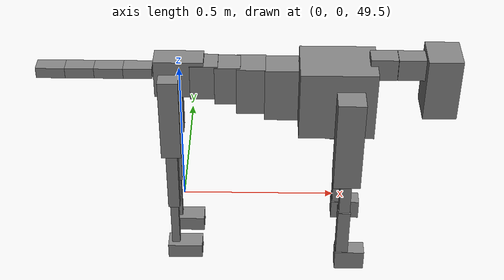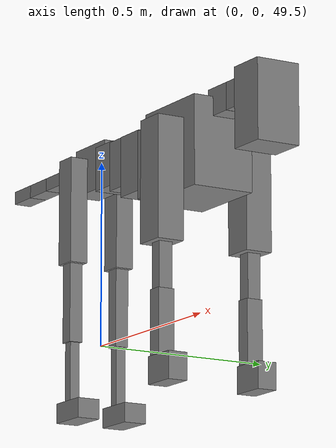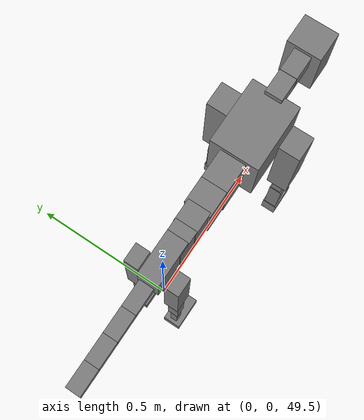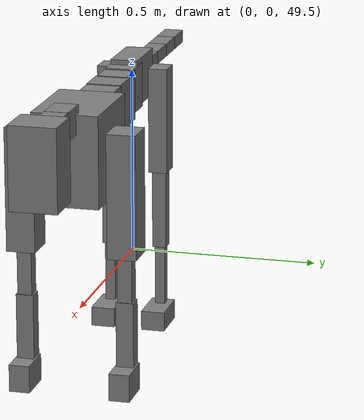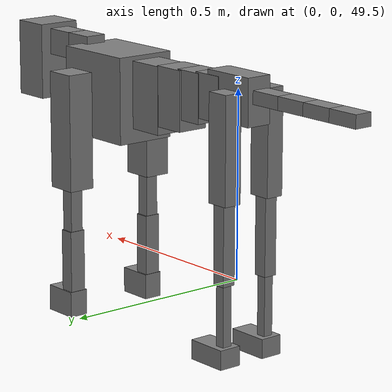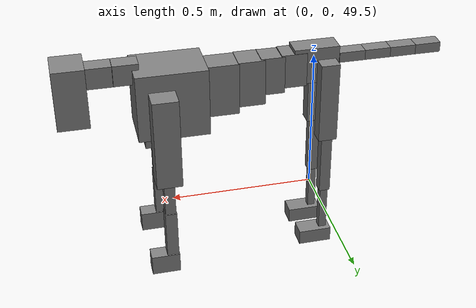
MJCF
<mujoco model="dog">

    <default>
        <joint armature="0.02" stiffness="1" damping="0.2" limited="true"/>
        <geom condim="3" friction="1 0.05 0.05" margin="0.01"/>
        <motor ctrllimited="true" ctrlrange="-1.0 1.0" forcelimited="true" gear="50"/>
    </default>

    <compiler inertiafromgeom="true" angle="radian"/>

    <option timestep="0.016" iterations="50" tolerance="1e-10" solver="Newton" jacobian="dense" cone="pyramidal"/>

    <size nconmax="20000" njmax="60000" nstack="5000000"/>
    <visual>
        <map force="0.1" zfar="30"/>
        <rgba haze="0.15 0.25 0.35 1"/>
        <quality shadowsize="2048"/>
        <global offwidth="800" offheight="800"/>
    </visual>

    <asset>
        <texture type="skybox" builtin="gradient" rgb1="0.3 0.5 0.7" rgb2="0 0 0" width="512" height="512"/>
        <texture name="texplane" type="2d" builtin="checker" rgb1=".2 .3 .4" rgb2=".1 0.15 0.2" width="512" height="512"
                 mark="cross" markrgb=".8 .8 .8"/>
        <texture name="texgeom" type="cube" builtin="flat" mark="cross" width="127" height="1278" rgb1="0.8 0.6 0.4"
                 rgb2="0.8 0.6 0.4" markrgb="1 1 1" random="0.01"/>

        <material name="matplane" reflectance="0.3" texture="texplane" texrepeat="1 1" texuniform="true"/>
        <material name="matgeom" texture="texgeom" texuniform="true" rgba="0.8 0.6 .4 1"/>
    </asset>

    <worldbody>
        <geom name="floor" pos="0 0 0" size="0 0 .25" type="plane" material="matplane" condim="3"/>

        <light directional="false" diffuse=".2 .2 .2" specular="0 0 0" pos="0 0 5" dir="0 0 -1" castshadow="false"/>
        <light mode="targetbodycom" target="torso" directional="false" diffuse=".8 .8 .8" specular="0.3 0.3 0.3"
               pos="0 0 4.0" dir="0 0 -1"/>

        <body name="root" pos="0 0 50">
            <freejoint name="root_1"/>
            <geom type="box" pos="0 0 -0.02" size="0.0774  0.0358  0.063" density="2030"/>

            <body name="spine1" pos="0.054 0 0">
                <joint name="spine1_y" axis="0 1 0" range="0 0.7" limited="true"/>
                <geom type="box" pos="0.02375 0 -0.03" size="0.04375  0.0375  0.05985" density="2030"/>

                <body name="spine2" pos="0.0612 0 0">
                    <joint name="spine2_y" axis="0 1 0" range="-0.15 0.15" limited="true"/>
                    <geom type="box" pos="0.03555  0  -0.04" size="0.04055  0.039  0.06615" density="2030"/>

                    <body name="spine3" pos="0.0730 0 0">
                        <joint name="spine3_y" axis="0 1 0" range="-0.15 0.15" limited="true"/>
                        <geom type="box" pos="0.03555  0  -0.057" size="0.04555  0.0445  0.081" density="2030"/>

                        <body name="spine4" pos="0.0780 0 0">
                            <joint name="spine4_y" axis="0 1 0" range="-0.15 0.15" limited="true"/>
                            <geom type="box" pos="0.05265  0  -0.07" size="0.05265  0.045  0.09135" density="2030"/>

                            <body name="torso" pos="0.1082 0 0">
                                <joint name="torso_y" axis="0 1 0" range="-0.15 0.15" limited="true"/>
                                <geom type="box" pos="0.11925  0  -0.085" size="0.11925  0.085  0.11745"
                                      density="2030"/>

                                <body name="neck1" pos="0.2160  0   0.0180">
                                    <joint name="neck1_y" axis="0 1 0" range="-1.2  -1" limited="true"/>
                                    <geom type="box" pos="0.0423  0  0" size="0.0423  0.03  0.036" density="2325"/>

                                    <body name="neck2" pos="0.0853  0  0">
                                        <joint name="neck2_y" axis="0 1 0" range="0.1  0" limited="true"/>
                                        <geom type="box" pos="0.0423  0  0" size="0.0423  0.03  0.036" density="2325"/>

                                        <body name="head" pos="0.0853  0  0">
                                            <joint name="head_y" axis="0 1 0" range="-0.3  -0.2" limited="true"/>
                                            <geom type="box" pos="0.0531  0  -0.055" size="0.0531  0.06  0.1044"
                                                  density="4030"/>

                                        </body>
                                    </body>
                                </body>

                                <body name="front_shoulder" pos="0.156  0   -0.0480">
                                    <joint name="front_shoulder_y" axis="0 1 0" range="-1 1.5" limited="true"/>
                                    <geom type="box" pos="0 0.13 -0.1326" size="0.0433  0.0370  0.1592" density="1158"/>
                                    <geom type="box" pos="0 -0.13 -0.1326" size="0.0433  0.0370  0.1592"
                                          density="1158"/>

                                    <body name="front_elbow" pos="0  0  -0.2651">
                                        <joint name="front_elbow_y" axis="0 1 0" range="-2 0" limited="true"/>
                                        <geom type="box" pos="0 0.13 -0.0794" size="0.0180  0.0184  0.0794"
                                              density="1081"/>
                                        <geom type="box" pos="0 -0.13 -0.0794" size="0.0180  0.0184  0.0794"
                                              density="1081"/>

                                        <body name="front_wrist" pos="0  0  -0.1588">
                                            <joint name="front_wrist_y" axis="0 1 0" range="-0.2 0" limited="true"/>
                                            <geom type="box" pos="0 0.13 -0.0857" size="0.0202  0.0224  0.0988"
                                                  density="1664"/>
                                            <geom type="box" pos="0 -0.13 -0.0857" size="0.0202  0.0224  0.0988"
                                                  density="1664"/>

                                            <body name="front_finger_end" pos="0  0  -0.1713">
                                                <joint name="front_finger_y" axis="0 1 0" range="-0.4 1"
                                                       limited="true"/>
                                                <geom type="box" pos="0.0266  0.13  -0.0204"
                                                      size="0.0488  0.0266  0.0354" density="1515"/>
                                                <geom type="box" pos="0.0266  -0.13  -0.0204"
                                                      size="0.0488  0.0266  0.0354" density="1515"/>

                                            </body>

                                        </body>
                                    </body>
                                </body>

                            </body>
                        </body>
                    </body>
                </body>
            </body>

            <body name="back_hip" pos="-0.03 0 -0.018">
                <joint name="back_hip_y" axis="0 1 0" range="-1.5 0.3" limited="true"/>
                <geom type="box" pos="0 0.07 -0.1197" size="0.0319  0.0250  0.1425" density="1154"/>
                <geom type="box" pos="0 -0.07 -0.1197" size="0.0319  0.0250  0.1425" density="1154"/>

                <body name="back_knee" pos="0  0  -0.2394">
                    <joint name="back_knee_y" axis="0 1 0" range="0 2.8" limited="true"/>
                    <geom type="box" pos="0 0.07 -0.1097" size="0.0188  0.0186  0.1253" density="1227"/>
                    <geom type="box" pos="0 -0.07 -0.1097" size="0.0188  0.0186  0.1253" density="1227"/>

                    <body name="back_ankle" pos="0  0  -0.2194">
                        <joint name="back_ankle_y" axis="0 1 0" range="-2.2 0" limited="true"/>
                        <geom type="box" pos="0 0.07 -0.0966" size="0.0134  0.0134  0.1078" density="1284"/>
                        <geom type="box" pos="0 -0.07 -0.0966" size="0.0134  0.0134  0.1078" density="1284"/>

                        <body name="back_toe_end" pos="0  0  -0.1931">
                            <joint name="back_toe_y" axis="0 1 0" range="-0.4 1" limited="true"/>
                            <geom type="box" pos="0.0316  0.07  -0.0112" size="0.0579  0.0316  0.0262" density="1515"/>
                            <geom type="box" pos="0.0316  -0.07  -0.0112" size="0.0579  0.0316  0.0262" density="1515"/>

                        </body>
                    </body>
                </body>
            </body>

            <body name="tail1" pos="-0.074 0 -0.006">
                <joint name="tail1_y" axis="0 1 0" range="-0.2 0.2" limited="true"/>
                <geom type="box" pos="-0.0536  0  0" size="0.045  0.025  0.0175" density="1587"/>

                <body name="tail2" pos="-0.09 0 0">
                    <joint name="tail2_y" axis="0 1 0" range="-0.2 0.2" limited="true"/>
                    <geom type="box" pos="-0.0536  0  0" size="0.045  0.025  0.0175" density="1587"/>

                    <body name="tail3" pos="-0.09 0 0">
                        <joint name="tail3_y" axis="0 1 0" range="-0.2 0.2" limited="true"/>
                        <geom type="box" pos="-0.0536  0  0" size="0.045  0.025  0.0175" density="1587"/>

                        <body name="tail4" pos="-0.09 0 0">
                            <joint name="tail4_y" axis="0 1 0" range="-0.2 0.2" limited="true"/>
                            <geom type="box" pos="-0.0536  0  0" size="0.045  0.025  0.0175" density="1587"/>

                        </body>
                    </body>
                </body>
            </body>
        </body>
    </worldbody>

    <actuator>
        <motor joint="spine1_y" forcerange="-150 150     "/>
        <motor joint="spine2_y" forcerange="-150 150     "/>
        <motor joint="spine3_y" forcerange="-150 150     "/>
        <motor joint="spine4_y" forcerange="-150 150     "/>
        <motor joint="torso_y" forcerange="-150 150     "/>
        <motor joint="neck1_y" forcerange="-100 100       "/>
        <motor joint="neck2_y" forcerange="-100 100       "/>
        <motor joint="head_y" forcerange="-150 150       "/>
        <motor joint="front_shoulder_y" forcerange="-187.38 159.56"/>
        <motor joint="front_elbow_y" forcerange="-128.43 105.17"/>
        <motor joint="front_wrist_y" forcerange="-89.74 89.76"/>
        <motor joint="front_finger_y" forcerange="-81.96 20.13"/>
        <motor joint="back_hip_y" forcerange="-265.29 268.10"/>
        <motor joint="back_knee_y" forcerange="-206.16 263.68"/>
        <motor joint="back_angle_y" forcerange="-57.88 57.24"/>
        <motor joint="back_toe_y" forcerange="-40.82 131.82"/>
        <motor joint="tail1_y" forcerange="-50 50     "/>
        <motor joint="tail2_y" forcerange="-50 50     "/>
        <motor joint="tail3_y" forcerange="-50 50     "/>
        <motor joint="tail4_y" forcerange="-50 50     "/>
    </actuator>
</mujoco>
